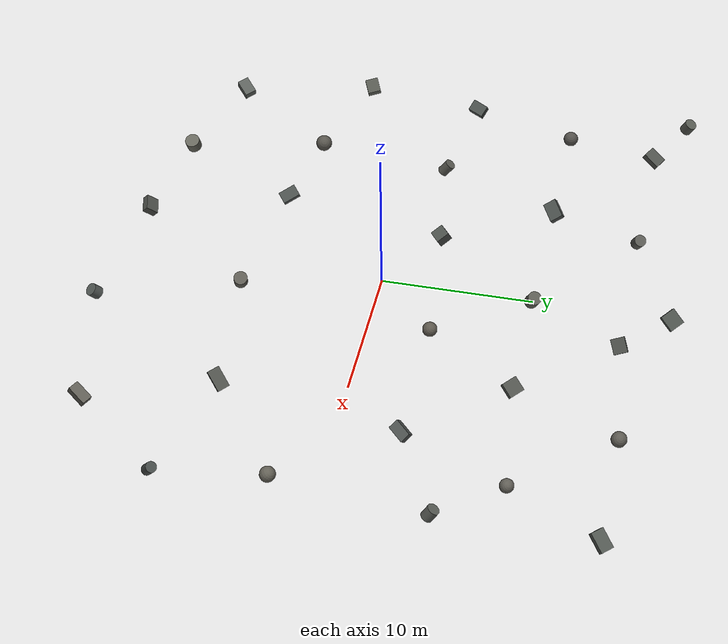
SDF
<sdf version="1.9">
 <world name="ocean">
  <scene>
   <ambient>0.08 0.18 0.28 1</ambient>
   <background>0.01 0.05 0.10 1</background>
   <shadows>false</shadows>
   <fog><type>linear</type><color>0.02 0.12 0.20 1</color><start>15</start><end>80</end></fog>
  </scene>
  <physics name="1ms" type="ignored">
   <max_step_size>0.001</max_step_size>
   <real_time_factor>1.0</real_time_factor>
  </physics>
  <plugin filename="ignition-gazebo-physics-system" name="ignition::gazebo::systems::Physics"/>
  <plugin filename="ignition-gazebo-user-commands-system" name="ignition::gazebo::systems::UserCommands"/>
  <plugin filename="ignition-gazebo-scene-broadcaster-system" name="ignition::gazebo::systems::SceneBroadcaster"/>
  <light type="directional" name="sun">
   <cast_shadows>false</cast_shadows>
   <pose>0 0 30 0 0 0</pose>
   <diffuse>0.35 0.65 0.75 1</diffuse>
   <specular>0.05 0.10 0.12 1</specular>
   <direction>-0.4 0.2 -1</direction>
  </light>
  <model name="buried_object_01">
   <static>true</static>
   <pose>-18 -14 0.15 0.2 0.4 0.8</pose>
   <link name="link">
    <visual name="visual">
     <geometry><box><size>1.2 0.8 0.6</size></box></geometry>
     <material><ambient>0.25 0.27 0.26 1</ambient><diffuse>0.35 0.37 0.35 1</diffuse></material>
    </visual>
    <collision name="collision"><geometry><box><size>1.2 0.8 0.6</size></box></geometry></collision>
   </link>
  </model>
  <model name="buried_object_02">
   <static>true</static>
   <pose>-11 -16 0.20 0.4 0.1 1.2</pose>
   <link name="link">
    <visual name="visual">
     <geometry><cylinder><radius>0.5</radius><length>0.8</length></cylinder></geometry>
     <material><ambient>0.28 0.29 0.27 1</ambient><diffuse>0.40 0.40 0.36 1</diffuse></material>
    </visual>
   </link>
  </model>
  <model name="buried_object_03">
   <static>true</static>
   <pose>-4 -17 0.12 0.3 0.7 2.0</pose>
   <link name="link">
    <visual name="visual">
     <geometry><box><size>0.9 1.1 0.5</size></box></geometry>
     <material><diffuse>0.30 0.31 0.29 1</diffuse></material>
    </visual>
   </link>
  </model>
  <model name="buried_object_04">
   <static>true</static>
   <pose>5 -18 0.18 0.7 0.2 0.4</pose>
   <link name="link">
    <visual name="visual">
     <geometry><cylinder><radius>0.42</radius><length>0.7</length></cylinder></geometry>
     <material><diffuse>0.32 0.34 0.33 1</diffuse></material>
    </visual>
   </link>
  </model>
  <model name="buried_object_05">
   <static>true</static>
   <pose>14 -16 0.15 0.1 0.5 1.1</pose>
   <link name="link">
    <visual name="visual">
     <geometry><box><size>1.3 0.7 0.6</size></box></geometry>
     <material><diffuse>0.37 0.36 0.33 1</diffuse></material>
    </visual>
   </link>
  </model>
  <model name="buried_object_06">
   <static>true</static>
   <pose>19 -10 0.16 0.6 0.3 2.1</pose>
   <link name="link">
    <visual name="visual">
     <geometry><cylinder><radius>0.35</radius><length>0.9</length></cylinder></geometry>
     <material><diffuse>0.27 0.29 0.28 1</diffuse></material>
    </visual>
   </link>
  </model>
  <model name="buried_object_07">
   <static>true</static>
   <pose>-20 -5 0.18 0.2 0.6 0.5</pose>
   <link name="link">
    <visual name="visual">
     <geometry><box><size>1.0 0.9 0.7</size></box></geometry>
     <material><diffuse>0.33 0.34 0.31 1</diffuse></material>
    </visual>
   </link>
  </model>
  <model name="buried_object_08">
   <static>true</static>
   <pose>-13 -7 0.12 0.8 0.2 1.7</pose>
   <link name="link">
    <visual name="visual">
     <geometry><sphere><radius>0.55</radius></sphere></geometry>
     <material><diffuse>0.34 0.33 0.30 1</diffuse></material>
    </visual>
   </link>
  </model>
  <model name="buried_object_09">
   <static>true</static>
   <pose>-7 -8 0.14 0.4 0.5 0.8</pose>
   <link name="link">
    <visual name="visual">
     <geometry><box><size>0.8 1.2 0.5</size></box></geometry>
     <material><diffuse>0.29 0.31 0.30 1</diffuse></material>
    </visual>
   </link>
  </model>
  <model name="buried_object_10">
   <static>true</static>
   <pose>2 -9 0.18 0.5 0.2 1.5</pose>
   <link name="link">
    <visual name="visual">
     <geometry><cylinder><radius>0.45</radius><length>0.8</length></cylinder></geometry>
     <material><diffuse>0.36 0.35 0.32 1</diffuse></material>
    </visual>
   </link>
  </model>
  <model name="buried_object_11">
   <static>true</static>
   <pose>11 -8 0.13 0.3 0.7 0.9</pose>
   <link name="link">
    <visual name="visual">
     <geometry><box><size>1.4 0.8 0.5</size></box></geometry>
     <material><diffuse>0.31 0.32 0.30 1</diffuse></material>
    </visual>
   </link>
  </model>
  <model name="buried_object_12">
   <static>true</static>
   <pose>18 -3 0.16 0.5 0.4 2.4</pose>
   <link name="link">
    <visual name="visual">
     <geometry><sphere><radius>0.5</radius></sphere></geometry>
     <material><diffuse>0.38 0.37 0.33 1</diffuse></material>
    </visual>
   </link>
  </model>
  <model name="buried_object_13">
   <static>true</static>
   <pose>-19 3 0.15 0.6 0.2 1.2</pose>
   <link name="link">
    <visual name="visual">
     <geometry><box><size>1.1 0.8 0.6</size></box></geometry>
     <material><diffuse>0.28 0.30 0.29 1</diffuse></material>
    </visual>
   </link>
  </model>
  <model name="buried_object_14">
   <static>true</static>
   <pose>-12 2 0.18 0.2 0.6 2.0</pose>
   <link name="link">
    <visual name="visual">
     <geometry><cylinder><radius>0.38</radius><length>0.9</length></cylinder></geometry>
     <material><diffuse>0.34 0.34 0.31 1</diffuse></material>
    </visual>
   </link>
  </model>
  <model name="buried_object_15">
   <static>true</static>
   <pose>-5 3 0.13 0.5 0.1 0.7</pose>
   <link name="link">
    <visual name="visual">
     <geometry><box><size>0.9 0.9 0.7</size></box></geometry>
     <material><diffuse>0.30 0.32 0.30 1</diffuse></material>
    </visual>
   </link>
  </model>
  <model name="buried_object_16">
   <static>true</static>
   <pose>4 4 0.16 0.4 0.6 1.6</pose>
   <link name="link">
    <visual name="visual">
     <geometry><sphere><radius>0.48</radius></sphere></geometry>
     <material><diffuse>0.36 0.34 0.30 1</diffuse></material>
    </visual>
   </link>
  </model>
  <model name="buried_object_17">
   <static>true</static>
   <pose>13 4 0.15 0.7 0.3 0.9</pose>
   <link name="link">
    <visual name="visual">
     <geometry><box><size>1.2 0.7 0.6</size></box></geometry>
     <material><diffuse>0.31 0.33 0.32 1</diffuse></material>
    </visual>
   </link>
  </model>
  <model name="buried_object_18">
   <static>true</static>
   <pose>19 7 0.18 0.2 0.5 2.2</pose>
   <link name="link">
    <visual name="visual">
     <geometry><cylinder><radius>0.4</radius><length>0.8</length></cylinder></geometry>
     <material><diffuse>0.34 0.35 0.33 1</diffuse></material>
    </visual>
   </link>
  </model>
  <model name="buried_object_19">
   <static>true</static>
   <pose>-17 10 0.13 0.4 0.2 1.3</pose>
   <link name="link">
    <visual name="visual">
     <geometry><sphere><radius>0.5</radius></sphere></geometry>
     <material><diffuse>0.32 0.31 0.29 1</diffuse></material>
    </visual>
   </link>
  </model>
  <model name="buried_object_20">
   <static>true</static>
   <pose>-9 10 0.15 0.6 0.4 0.6</pose>
   <link name="link">
    <visual name="visual">
     <geometry><box><size>1.3 0.9 0.5</size></box></geometry>
     <material><diffuse>0.29 0.31 0.30 1</diffuse></material>
    </visual>
   </link>
  </model>
  <model name="buried_object_21">
   <static>true</static>
   <pose>0 10 0.18 0.5 0.3 1.7</pose>
   <link name="link">
    <visual name="visual">
     <geometry><cylinder><radius>0.45</radius><length>0.9</length></cylinder></geometry>
     <material><diffuse>0.35 0.35 0.32 1</diffuse></material>
    </visual>
   </link>
  </model>
  <model name="buried_object_22">
   <static>true</static>
   <pose>8 10 0.14 0.3 0.6 0.9</pose>
   <link name="link">
    <visual name="visual">
     <geometry><box><size>1.0 1.0 0.6</size></box></geometry>
     <material><diffuse>0.31 0.32 0.30 1</diffuse></material>
    </visual>
   </link>
  </model>
  <model name="buried_object_23">
   <static>true</static>
   <pose>16 11 0.16 0.7 0.2 2.0</pose>
   <link name="link">
    <visual name="visual">
     <geometry><sphere><radius>0.45</radius></sphere></geometry>
     <material><diffuse>0.37 0.36 0.33 1</diffuse></material>
    </visual>
   </link>
  </model>
  <model name="buried_object_24">
   <static>true</static>
   <pose>-16 16 0.14 0.3 0.5 1.1</pose>
   <link name="link">
    <visual name="visual">
     <geometry><box><size>1.2 0.8 0.6</size></box></geometry>
     <material><diffuse>0.30 0.31 0.29 1</diffuse></material>
    </visual>
   </link>
  </model>
  <model name="buried_object_25">
   <static>true</static>
   <pose>-7 16 0.17 0.6 0.2 1.9</pose>
   <link name="link">
    <visual name="visual">
     <geometry><cylinder><radius>0.4</radius><length>0.8</length></cylinder></geometry>
     <material><diffuse>0.34 0.34 0.32 1</diffuse></material>
    </visual>
   </link>
  </model>
  <model name="buried_object_26">
   <static>true</static>
   <pose>3 16 0.13 0.4 0.7 0.5</pose>
   <link name="link">
    <visual name="visual">
     <geometry><box><size>1.0 0.9 0.5</size></box></geometry>
     <material><diffuse>0.29 0.30 0.28 1</diffuse></material>
    </visual>
   </link>
  </model>
  <model name="buried_object_27">
   <static>true</static>
   <pose>11 17 0.18 0.5 0.4 1.5</pose>
   <link name="link">
    <visual name="visual">
     <geometry><sphere><radius>0.5</radius></sphere></geometry>
     <material><diffuse>0.36 0.35 0.32 1</diffuse></material>
    </visual>
   </link>
  </model>
  <model name="buried_object_28">
   <static>true</static>
   <pose>19 17 0.15 0.2 0.6 0.8</pose>
   <link name="link">
    <visual name="visual">
     <geometry><box><size>1.3 0.8 0.6</size></box></geometry>
     <material><diffuse>0.31 0.33 0.31 1</diffuse></material>
    </visual>
   </link>
  </model>
  <model name="buried_object_29">
   <static>true</static>
   <pose>-20 18 0.16 0.4 0.3 2.1</pose>
   <link name="link">
    <visual name="visual">
     <geometry><cylinder><radius>0.42</radius><length>0.8</length></cylinder></geometry>
     <material><diffuse>0.33 0.34 0.31 1</diffuse></material>
    </visual>
   </link>
  </model>
  <model name="buried_object_30">
   <static>true</static>
   <pose>0 19 0.14 0.5 0.6 1.0</pose>
   <link name="link">
    <visual name="visual">
     <geometry><box><size>1.1 1.0 0.6</size></box></geometry>
     <material><diffuse>0.30 0.32 0.30 1</diffuse></material>
    </visual>
   </link>
  </model>
 </world>
</sdf>
